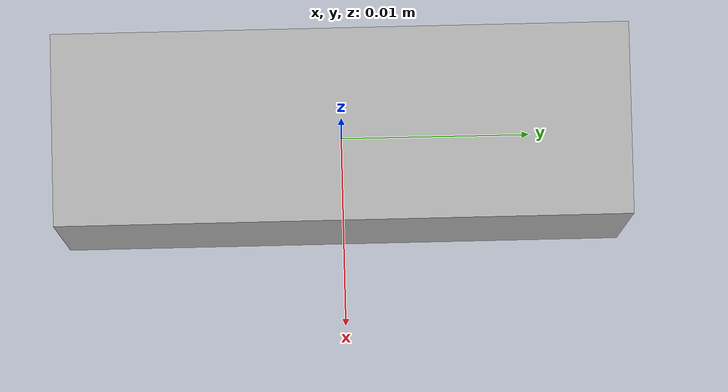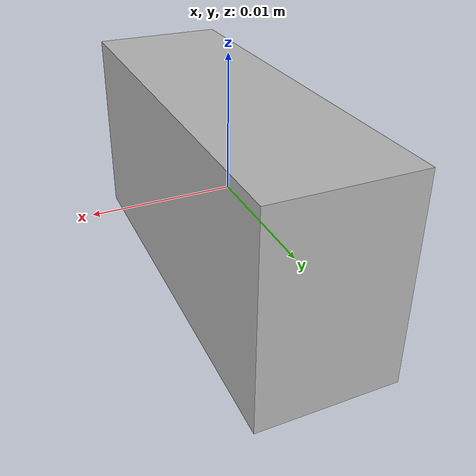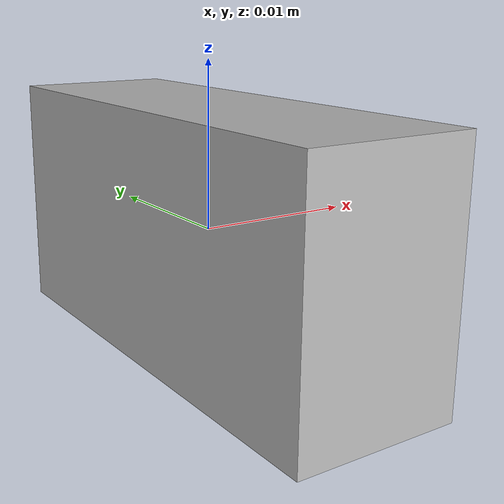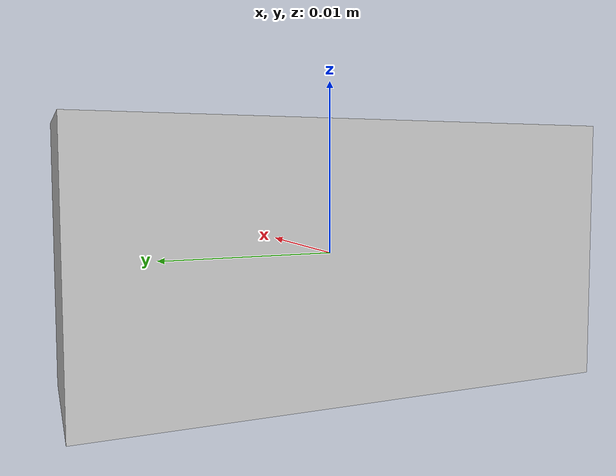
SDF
<?xml version="1.0" ?>
<sdf version="1.4">
  <model name="infrared_sensor">
    <static>true</static>
    <link name="link">
      <gravity>false</gravity>
      <inertial>
        <mass>0.02</mass>
      </inertial>
      <visual name="visual">
        <geometry>
          <box>
	    <size>0.01 0.03 0.015</size>
	  </box>
        </geometry>
	<cast_shadows>false</cast_shadows>
      </visual>
      <sensor name="infrared_puck_sensor" type="ray">
        <pose>0 0 0 0 0 0</pose>
        <ray>
          <scan>
            <horizontal>
              <samples>3</samples>
              <resolution>0.02</resolution>
              <min_angle>-0.02</min_angle>
              <max_angle>0.02</max_angle>
            </horizontal>
          </scan>
          <range>
            <min>0.025</min>
            <max>0.5</max>
            <resolution>0.001</resolution>
          </range>
	  <noise>
	    <type>gaussian</type>
	    <mean>0</mean>
	    <stddev>0.0001</stddev>
	  </noise>
        </ray>
        <always_on>1</always_on>
        <update_rate>5</update_rate>
        <visualize>false</visualize>
      </sensor>
    </link>
  </model>
</sdf>
